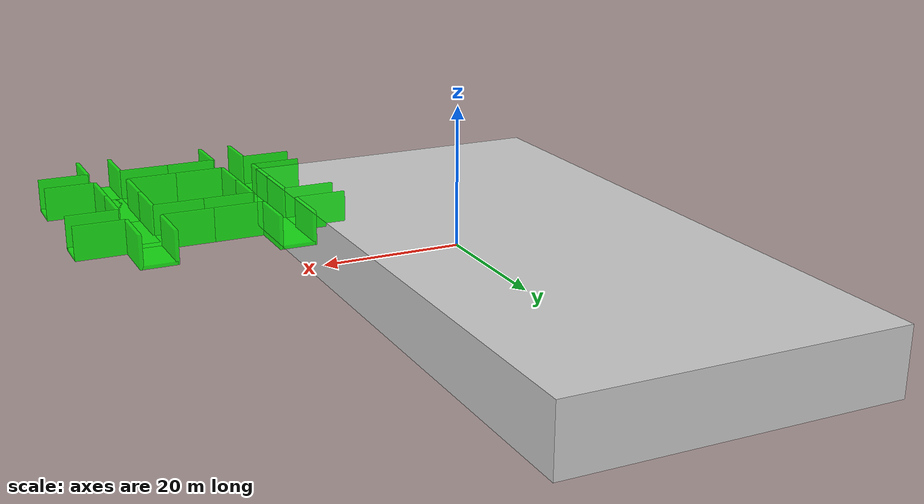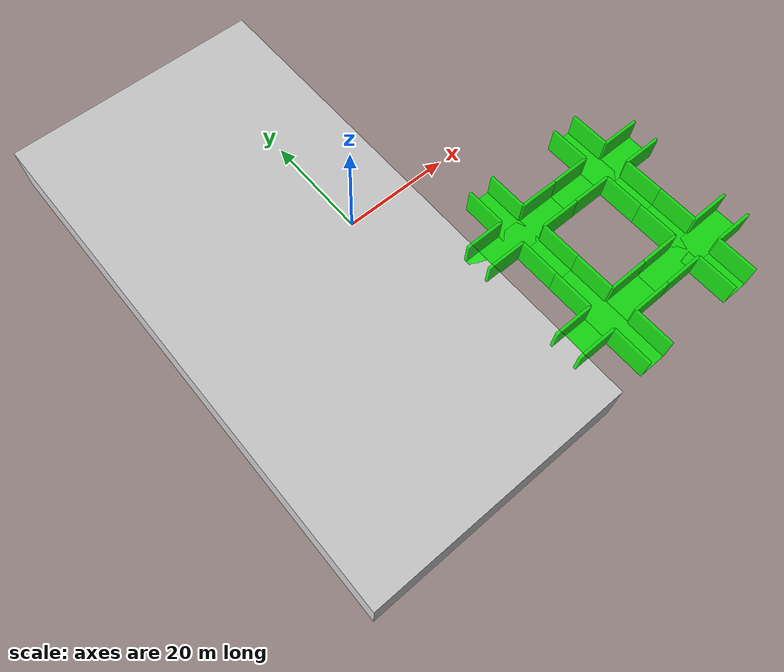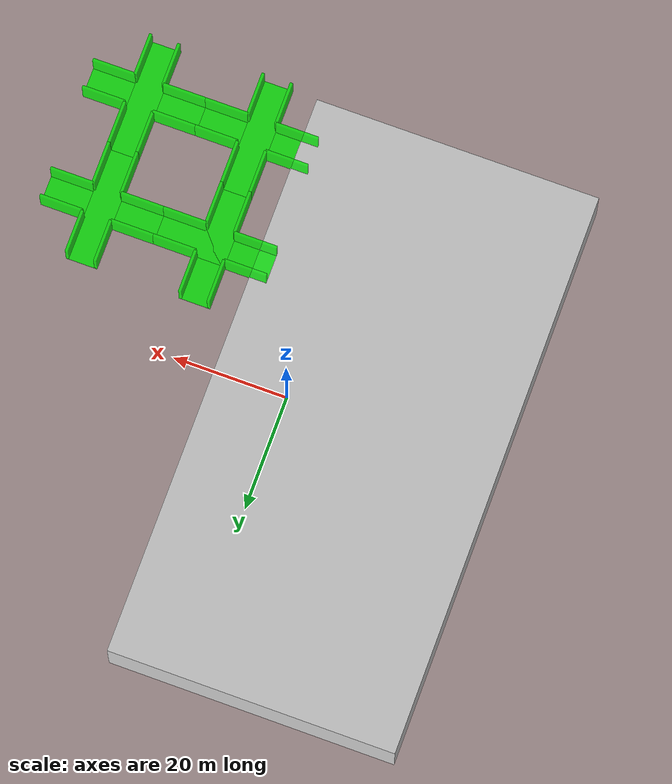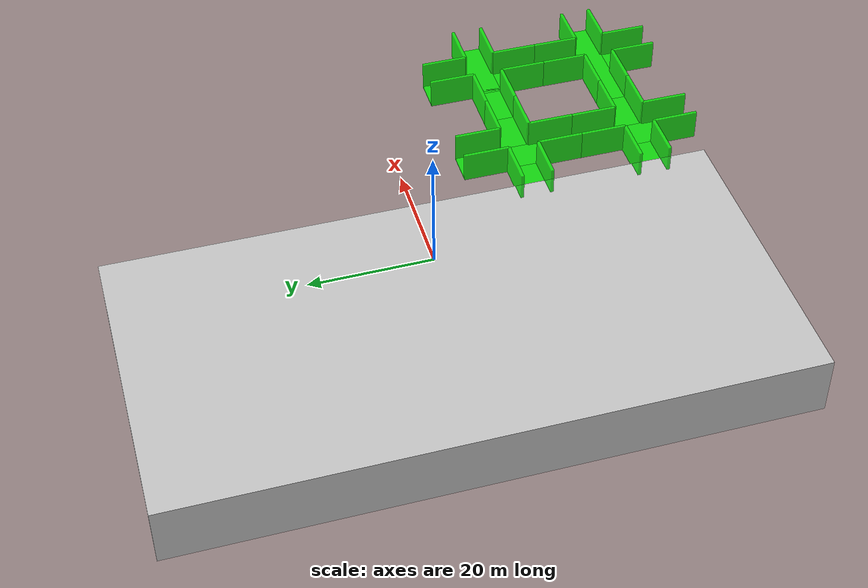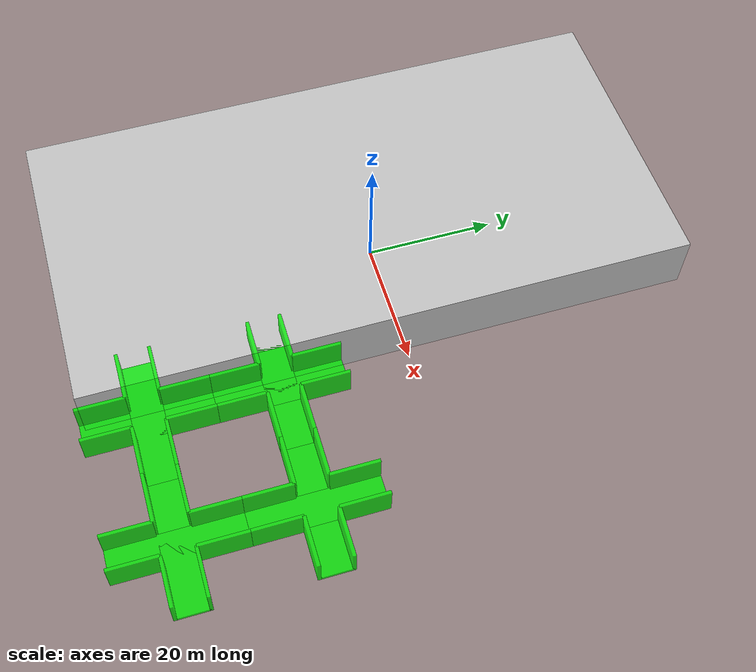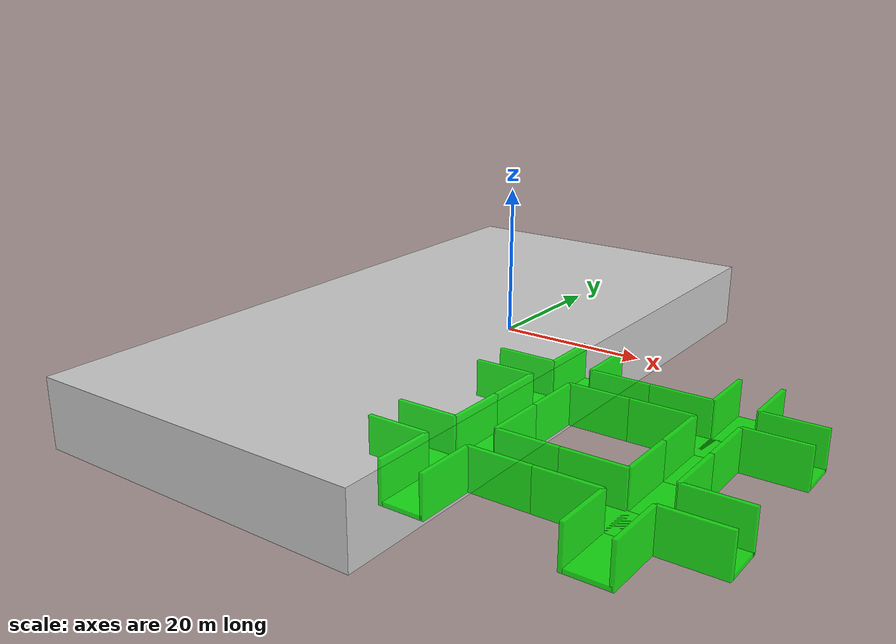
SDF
<sdf version="1.6">
 <world name="levels">
  <model name="stage">
   <pose>-12 0 -5 0 0 0</pose>
   <static>true</static>
   <link name="link">
    <collision name="collision"><geometry><box><size>50 100 10</size></box></geometry></collision>
    <visual name="visual">
     <geometry><box><size>50 100 10</size></box></geometry>
     <material>
      <ambient>0.8 0.8 0.8 1</ambient>
      <diffuse>0.8 0.8 0.8 1</diffuse>
      <specular>0.8 0.8 0.8 1</specular>
     </material>
    </visual>
   </link>
  </model>
  <model name="tile_1">
   <pose>20 -40 0 0 0 -1.5707963267948966</pose>
   <static>true</static>
   <link name="link">
    <collision name="collision_0">
     <pose>0 0 -0.25 0 0 0</pose>
     <geometry><box><size>5 20 0.5</size></box></geometry>
    </collision>
    <visual name="visual_0">
     <pose>0 0 -0.25 0 0 0</pose>
     <geometry><box><size>5 20 0.5</size></box></geometry>
     <material><ambient>0 1 0 0.8</ambient><diffuse>0 1 0 0.8</diffuse><specular>1 1 1 0.8</specular></material>
    </visual>
    <collision name="collision_1">
     <pose>0 0 -0.25 0 0 1.57</pose>
     <geometry><box><size>5 20 0.5</size></box></geometry>
    </collision>
    <visual name="visual_1">
     <pose>0 0 -0.25 0 0 1.57</pose>
     <geometry><box><size>5 20 0.5</size></box></geometry>
     <material><ambient>0 1 0 0.8</ambient><diffuse>0 1 0 0.8</diffuse><specular>1 1 1 0.8</specular></material>
    </visual>
    <collision name="collision_2">
     <pose>-2.5 6.25 2 3.14 -1.57 0</pose>
     <geometry><box><size>5 7.5 0.5</size></box></geometry>
    </collision>
    <visual name="visual_2">
     <pose>-2.5 6.25 2 3.14 -1.57 0</pose>
     <geometry><box><size>5 7.5 0.5</size></box></geometry>
     <material><ambient>0 1 0 0.8</ambient><diffuse>0 1 0 0.8</diffuse><specular>1 1 1 0.8</specular></material>
    </visual>
    <collision name="collision_3">
     <pose>2.5 6.25 2 3.14 -1.57 0</pose>
     <geometry><box><size>5 7.5 0.5</size></box></geometry>
    </collision>
    <visual name="visual_3">
     <pose>2.5 6.25 2 3.14 -1.57 0</pose>
     <geometry><box><size>5 7.5 0.5</size></box></geometry>
     <material><ambient>0 1 0 0.8</ambient><diffuse>0 1 0 0.8</diffuse><specular>1 1 1 0.8</specular></material>
    </visual>
    <collision name="collision_4">
     <pose>-2.5 -6.25 2 3.14 -1.57 0</pose>
     <geometry><box><size>5 7.5 0.5</size></box></geometry>
    </collision>
    <visual name="visual_4">
     <pose>-2.5 -6.25 2 3.14 -1.57 0</pose>
     <geometry><box><size>5 7.5 0.5</size></box></geometry>
     <material><ambient>0 1 0 0.8</ambient><diffuse>0 1 0 0.8</diffuse><specular>1 1 1 0.8</specular></material>
    </visual>
    <collision name="collision_5">
     <pose>2.5 -6.25 2 3.14 -1.57 0</pose>
     <geometry><box><size>5 7.5 0.5</size></box></geometry>
    </collision>
    <visual name="visual_5">
     <pose>2.5 -6.25 2 3.14 -1.57 0</pose>
     <geometry><box><size>5 7.5 0.5</size></box></geometry>
     <material><ambient>0 1 0 0.8</ambient><diffuse>0 1 0 0.8</diffuse><specular>1 1 1 0.8</specular></material>
    </visual>
    <collision name="collision_6">
     <pose>6.25 2.5 2 1.57 1.57 0</pose>
     <geometry><box><size>5 7.5 0.5</size></box></geometry>
    </collision>
    <visual name="visual_6">
     <pose>6.25 2.5 2 1.57 1.57 0</pose>
     <geometry><box><size>5 7.5 0.5</size></box></geometry>
     <material><ambient>0 1 0 0.8</ambient><diffuse>0 1 0 0.8</diffuse><specular>1 1 1 0.8</specular></material>
    </visual>
    <collision name="collision_7">
     <pose>-6.25 2.5 2 1.57 1.57 0</pose>
     <geometry><box><size>5 7.5 0.5</size></box></geometry>
    </collision>
    <visual name="visual_7">
     <pose>-6.25 2.5 2 1.57 1.57 0</pose>
     <geometry><box><size>5 7.5 0.5</size></box></geometry>
     <material><ambient>0 1 0 0.8</ambient><diffuse>0 1 0 0.8</diffuse><specular>1 1 1 0.8</specular></material>
    </visual>
    <collision name="collision_8">
     <pose>6.25 -2.5 2 1.57 1.57 0</pose>
     <geometry><box><size>5 7.5 0.5</size></box></geometry>
    </collision>
    <visual name="visual_8">
     <pose>6.25 -2.5 2 1.57 1.57 0</pose>
     <geometry><box><size>5 7.5 0.5</size></box></geometry>
     <material><ambient>0 1 0 0.8</ambient><diffuse>0 1 0 0.8</diffuse><specular>1 1 1 0.8</specular></material>
    </visual>
    <collision name="collision_9">
     <pose>-6.25 -2.5 2 1.57 1.57 0</pose>
     <geometry><box><size>5 7.5 0.5</size></box></geometry>
    </collision>
    <visual name="visual_9">
     <pose>-6.25 -2.5 2 1.57 1.57 0</pose>
     <geometry><box><size>5 7.5 0.5</size></box></geometry>
     <material><ambient>0 1 0 0.8</ambient><diffuse>0 1 0 0.8</diffuse><specular>1 1 1 0.8</specular></material>
    </visual>
   </link>
  </model>
  <model name="tile_2">
   <pose>20 -20 0 0 0 -1.5707963267948966</pose>
   <static>true</static>
   <link name="link">
    <collision name="collision_0">
     <pose>0 0 -0.25 0 0 0</pose>
     <geometry><box><size>5 20 0.5</size></box></geometry>
    </collision>
    <visual name="visual_0">
     <pose>0 0 -0.25 0 0 0</pose>
     <geometry><box><size>5 20 0.5</size></box></geometry>
     <material><ambient>0 1 0 0.8</ambient><diffuse>0 1 0 0.8</diffuse><specular>1 1 1 0.8</specular></material>
    </visual>
    <collision name="collision_1">
     <pose>0 0 -0.25 0 0 1.57</pose>
     <geometry><box><size>5 20 0.5</size></box></geometry>
    </collision>
    <visual name="visual_1">
     <pose>0 0 -0.25 0 0 1.57</pose>
     <geometry><box><size>5 20 0.5</size></box></geometry>
     <material><ambient>0 1 0 0.8</ambient><diffuse>0 1 0 0.8</diffuse><specular>1 1 1 0.8</specular></material>
    </visual>
    <collision name="collision_2">
     <pose>-2.5 6.25 2 3.14 -1.57 0</pose>
     <geometry><box><size>5 7.5 0.5</size></box></geometry>
    </collision>
    <visual name="visual_2">
     <pose>-2.5 6.25 2 3.14 -1.57 0</pose>
     <geometry><box><size>5 7.5 0.5</size></box></geometry>
     <material><ambient>0 1 0 0.8</ambient><diffuse>0 1 0 0.8</diffuse><specular>1 1 1 0.8</specular></material>
    </visual>
    <collision name="collision_3">
     <pose>2.5 6.25 2 3.14 -1.57 0</pose>
     <geometry><box><size>5 7.5 0.5</size></box></geometry>
    </collision>
    <visual name="visual_3">
     <pose>2.5 6.25 2 3.14 -1.57 0</pose>
     <geometry><box><size>5 7.5 0.5</size></box></geometry>
     <material><ambient>0 1 0 0.8</ambient><diffuse>0 1 0 0.8</diffuse><specular>1 1 1 0.8</specular></material>
    </visual>
    <collision name="collision_4">
     <pose>-2.5 -6.25 2 3.14 -1.57 0</pose>
     <geometry><box><size>5 7.5 0.5</size></box></geometry>
    </collision>
    <visual name="visual_4">
     <pose>-2.5 -6.25 2 3.14 -1.57 0</pose>
     <geometry><box><size>5 7.5 0.5</size></box></geometry>
     <material><ambient>0 1 0 0.8</ambient><diffuse>0 1 0 0.8</diffuse><specular>1 1 1 0.8</specular></material>
    </visual>
    <collision name="collision_5">
     <pose>2.5 -6.25 2 3.14 -1.57 0</pose>
     <geometry><box><size>5 7.5 0.5</size></box></geometry>
    </collision>
    <visual name="visual_5">
     <pose>2.5 -6.25 2 3.14 -1.57 0</pose>
     <geometry><box><size>5 7.5 0.5</size></box></geometry>
     <material><ambient>0 1 0 0.8</ambient><diffuse>0 1 0 0.8</diffuse><specular>1 1 1 0.8</specular></material>
    </visual>
    <collision name="collision_6">
     <pose>6.25 2.5 2 1.57 1.57 0</pose>
     <geometry><box><size>5 7.5 0.5</size></box></geometry>
    </collision>
    <visual name="visual_6">
     <pose>6.25 2.5 2 1.57 1.57 0</pose>
     <geometry><box><size>5 7.5 0.5</size></box></geometry>
     <material><ambient>0 1 0 0.8</ambient><diffuse>0 1 0 0.8</diffuse><specular>1 1 1 0.8</specular></material>
    </visual>
    <collision name="collision_7">
     <pose>-6.25 2.5 2 1.57 1.57 0</pose>
     <geometry><box><size>5 7.5 0.5</size></box></geometry>
    </collision>
    <visual name="visual_7">
     <pose>-6.25 2.5 2 1.57 1.57 0</pose>
     <geometry><box><size>5 7.5 0.5</size></box></geometry>
     <material><ambient>0 1 0 0.8</ambient><diffuse>0 1 0 0.8</diffuse><specular>1 1 1 0.8</specular></material>
    </visual>
    <collision name="collision_8">
     <pose>6.25 -2.5 2 1.57 1.57 0</pose>
     <geometry><box><size>5 7.5 0.5</size></box></geometry>
    </collision>
    <visual name="visual_8">
     <pose>6.25 -2.5 2 1.57 1.57 0</pose>
     <geometry><box><size>5 7.5 0.5</size></box></geometry>
     <material><ambient>0 1 0 0.8</ambient><diffuse>0 1 0 0.8</diffuse><specular>1 1 1 0.8</specular></material>
    </visual>
    <collision name="collision_9">
     <pose>-6.25 -2.5 2 1.57 1.57 0</pose>
     <geometry><box><size>5 7.5 0.5</size></box></geometry>
    </collision>
    <visual name="visual_9">
     <pose>-6.25 -2.5 2 1.57 1.57 0</pose>
     <geometry><box><size>5 7.5 0.5</size></box></geometry>
     <material><ambient>0 1 0 0.8</ambient><diffuse>0 1 0 0.8</diffuse><specular>1 1 1 0.8</specular></material>
    </visual>
   </link>
  </model>
  <model name="tile_6">
   <pose>40 -40 0 0 0 0</pose>
   <static>true</static>
   <link name="link">
    <collision name="collision_0">
     <pose>0 0 -0.25 0 0 0</pose>
     <geometry><box><size>5 20 0.5</size></box></geometry>
    </collision>
    <visual name="visual_0">
     <pose>0 0 -0.25 0 0 0</pose>
     <geometry><box><size>5 20 0.5</size></box></geometry>
     <material><ambient>0 1 0 0.8</ambient><diffuse>0 1 0 0.8</diffuse><specular>1 1 1 0.8</specular></material>
    </visual>
    <collision name="collision_1">
     <pose>0 0 -0.25 0 0 1.57</pose>
     <geometry><box><size>5 20 0.5</size></box></geometry>
    </collision>
    <visual name="visual_1">
     <pose>0 0 -0.25 0 0 1.57</pose>
     <geometry><box><size>5 20 0.5</size></box></geometry>
     <material><ambient>0 1 0 0.8</ambient><diffuse>0 1 0 0.8</diffuse><specular>1 1 1 0.8</specular></material>
    </visual>
    <collision name="collision_2">
     <pose>-2.5 6.25 2 3.14 -1.57 0</pose>
     <geometry><box><size>5 7.5 0.5</size></box></geometry>
    </collision>
    <visual name="visual_2">
     <pose>-2.5 6.25 2 3.14 -1.57 0</pose>
     <geometry><box><size>5 7.5 0.5</size></box></geometry>
     <material><ambient>0 1 0 0.8</ambient><diffuse>0 1 0 0.8</diffuse><specular>1 1 1 0.8</specular></material>
    </visual>
    <collision name="collision_3">
     <pose>2.5 6.25 2 3.14 -1.57 0</pose>
     <geometry><box><size>5 7.5 0.5</size></box></geometry>
    </collision>
    <visual name="visual_3">
     <pose>2.5 6.25 2 3.14 -1.57 0</pose>
     <geometry><box><size>5 7.5 0.5</size></box></geometry>
     <material><ambient>0 1 0 0.8</ambient><diffuse>0 1 0 0.8</diffuse><specular>1 1 1 0.8</specular></material>
    </visual>
    <collision name="collision_4">
     <pose>-2.5 -6.25 2 3.14 -1.57 0</pose>
     <geometry><box><size>5 7.5 0.5</size></box></geometry>
    </collision>
    <visual name="visual_4">
     <pose>-2.5 -6.25 2 3.14 -1.57 0</pose>
     <geometry><box><size>5 7.5 0.5</size></box></geometry>
     <material><ambient>0 1 0 0.8</ambient><diffuse>0 1 0 0.8</diffuse><specular>1 1 1 0.8</specular></material>
    </visual>
    <collision name="collision_5">
     <pose>2.5 -6.25 2 3.14 -1.57 0</pose>
     <geometry><box><size>5 7.5 0.5</size></box></geometry>
    </collision>
    <visual name="visual_5">
     <pose>2.5 -6.25 2 3.14 -1.57 0</pose>
     <geometry><box><size>5 7.5 0.5</size></box></geometry>
     <material><ambient>0 1 0 0.8</ambient><diffuse>0 1 0 0.8</diffuse><specular>1 1 1 0.8</specular></material>
    </visual>
    <collision name="collision_6">
     <pose>6.25 2.5 2 1.57 1.57 0</pose>
     <geometry><box><size>5 7.5 0.5</size></box></geometry>
    </collision>
    <visual name="visual_6">
     <pose>6.25 2.5 2 1.57 1.57 0</pose>
     <geometry><box><size>5 7.5 0.5</size></box></geometry>
     <material><ambient>0 1 0 0.8</ambient><diffuse>0 1 0 0.8</diffuse><specular>1 1 1 0.8</specular></material>
    </visual>
    <collision name="collision_7">
     <pose>-6.25 2.5 2 1.57 1.57 0</pose>
     <geometry><box><size>5 7.5 0.5</size></box></geometry>
    </collision>
    <visual name="visual_7">
     <pose>-6.25 2.5 2 1.57 1.57 0</pose>
     <geometry><box><size>5 7.5 0.5</size></box></geometry>
     <material><ambient>0 1 0 0.8</ambient><diffuse>0 1 0 0.8</diffuse><specular>1 1 1 0.8</specular></material>
    </visual>
    <collision name="collision_8">
     <pose>6.25 -2.5 2 1.57 1.57 0</pose>
     <geometry><box><size>5 7.5 0.5</size></box></geometry>
    </collision>
    <visual name="visual_8">
     <pose>6.25 -2.5 2 1.57 1.57 0</pose>
     <geometry><box><size>5 7.5 0.5</size></box></geometry>
     <material><ambient>0 1 0 0.8</ambient><diffuse>0 1 0 0.8</diffuse><specular>1 1 1 0.8</specular></material>
    </visual>
    <collision name="collision_9">
     <pose>-6.25 -2.5 2 1.57 1.57 0</pose>
     <geometry><box><size>5 7.5 0.5</size></box></geometry>
    </collision>
    <visual name="visual_9">
     <pose>-6.25 -2.5 2 1.57 1.57 0</pose>
     <geometry><box><size>5 7.5 0.5</size></box></geometry>
     <material><ambient>0 1 0 0.8</ambient><diffuse>0 1 0 0.8</diffuse><specular>1 1 1 0.8</specular></material>
    </visual>
   </link>
  </model>
  <model name="tile_7">
   <pose>40 -20 0 0 0 -1.5707963267948966</pose>
   <static>true</static>
   <link name="link">
    <collision name="collision_0">
     <pose>0 0 -0.25 0 0 0</pose>
     <geometry><box><size>5 20 0.5</size></box></geometry>
    </collision>
    <visual name="visual_0">
     <pose>0 0 -0.25 0 0 0</pose>
     <geometry><box><size>5 20 0.5</size></box></geometry>
     <material><ambient>0 1 0 0.8</ambient><diffuse>0 1 0 0.8</diffuse><specular>1 1 1 0.8</specular></material>
    </visual>
    <collision name="collision_1">
     <pose>0 0 -0.25 0 0 1.57</pose>
     <geometry><box><size>5 20 0.5</size></box></geometry>
    </collision>
    <visual name="visual_1">
     <pose>0 0 -0.25 0 0 1.57</pose>
     <geometry><box><size>5 20 0.5</size></box></geometry>
     <material><ambient>0 1 0 0.8</ambient><diffuse>0 1 0 0.8</diffuse><specular>1 1 1 0.8</specular></material>
    </visual>
    <collision name="collision_2">
     <pose>-2.5 6.25 2 3.14 -1.57 0</pose>
     <geometry><box><size>5 7.5 0.5</size></box></geometry>
    </collision>
    <visual name="visual_2">
     <pose>-2.5 6.25 2 3.14 -1.57 0</pose>
     <geometry><box><size>5 7.5 0.5</size></box></geometry>
     <material><ambient>0 1 0 0.8</ambient><diffuse>0 1 0 0.8</diffuse><specular>1 1 1 0.8</specular></material>
    </visual>
    <collision name="collision_3">
     <pose>2.5 6.25 2 3.14 -1.57 0</pose>
     <geometry><box><size>5 7.5 0.5</size></box></geometry>
    </collision>
    <visual name="visual_3">
     <pose>2.5 6.25 2 3.14 -1.57 0</pose>
     <geometry><box><size>5 7.5 0.5</size></box></geometry>
     <material><ambient>0 1 0 0.8</ambient><diffuse>0 1 0 0.8</diffuse><specular>1 1 1 0.8</specular></material>
    </visual>
    <collision name="collision_4">
     <pose>-2.5 -6.25 2 3.14 -1.57 0</pose>
     <geometry><box><size>5 7.5 0.5</size></box></geometry>
    </collision>
    <visual name="visual_4">
     <pose>-2.5 -6.25 2 3.14 -1.57 0</pose>
     <geometry><box><size>5 7.5 0.5</size></box></geometry>
     <material><ambient>0 1 0 0.8</ambient><diffuse>0 1 0 0.8</diffuse><specular>1 1 1 0.8</specular></material>
    </visual>
    <collision name="collision_5">
     <pose>2.5 -6.25 2 3.14 -1.57 0</pose>
     <geometry><box><size>5 7.5 0.5</size></box></geometry>
    </collision>
    <visual name="visual_5">
     <pose>2.5 -6.25 2 3.14 -1.57 0</pose>
     <geometry><box><size>5 7.5 0.5</size></box></geometry>
     <material><ambient>0 1 0 0.8</ambient><diffuse>0 1 0 0.8</diffuse><specular>1 1 1 0.8</specular></material>
    </visual>
    <collision name="collision_6">
     <pose>6.25 2.5 2 1.57 1.57 0</pose>
     <geometry><box><size>5 7.5 0.5</size></box></geometry>
    </collision>
    <visual name="visual_6">
     <pose>6.25 2.5 2 1.57 1.57 0</pose>
     <geometry><box><size>5 7.5 0.5</size></box></geometry>
     <material><ambient>0 1 0 0.8</ambient><diffuse>0 1 0 0.8</diffuse><specular>1 1 1 0.8</specular></material>
    </visual>
    <collision name="collision_7">
     <pose>-6.25 2.5 2 1.57 1.57 0</pose>
     <geometry><box><size>5 7.5 0.5</size></box></geometry>
    </collision>
    <visual name="visual_7">
     <pose>-6.25 2.5 2 1.57 1.57 0</pose>
     <geometry><box><size>5 7.5 0.5</size></box></geometry>
     <material><ambient>0 1 0 0.8</ambient><diffuse>0 1 0 0.8</diffuse><specular>1 1 1 0.8</specular></material>
    </visual>
    <collision name="collision_8">
     <pose>6.25 -2.5 2 1.57 1.57 0</pose>
     <geometry><box><size>5 7.5 0.5</size></box></geometry>
    </collision>
    <visual name="visual_8">
     <pose>6.25 -2.5 2 1.57 1.57 0</pose>
     <geometry><box><size>5 7.5 0.5</size></box></geometry>
     <material><ambient>0 1 0 0.8</ambient><diffuse>0 1 0 0.8</diffuse><specular>1 1 1 0.8</specular></material>
    </visual>
    <collision name="collision_9">
     <pose>-6.25 -2.5 2 1.57 1.57 0</pose>
     <geometry><box><size>5 7.5 0.5</size></box></geometry>
    </collision>
    <visual name="visual_9">
     <pose>-6.25 -2.5 2 1.57 1.57 0</pose>
     <geometry><box><size>5 7.5 0.5</size></box></geometry>
     <material><ambient>0 1 0 0.8</ambient><diffuse>0 1 0 0.8</diffuse><specular>1 1 1 0.8</specular></material>
    </visual>
   </link>
  </model>
 </world>
</sdf>
